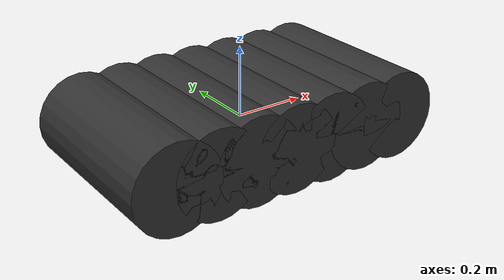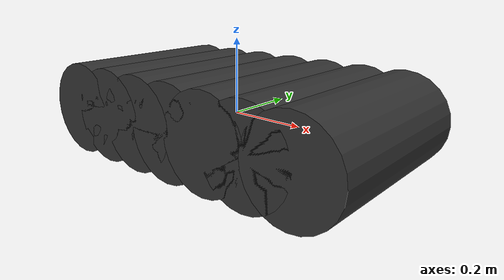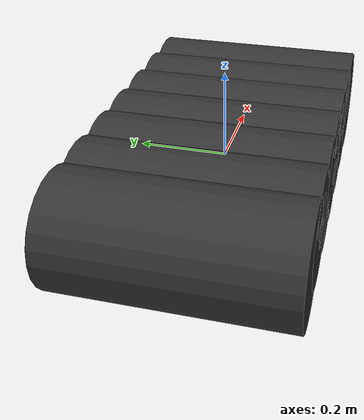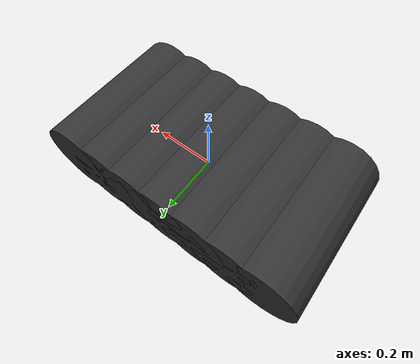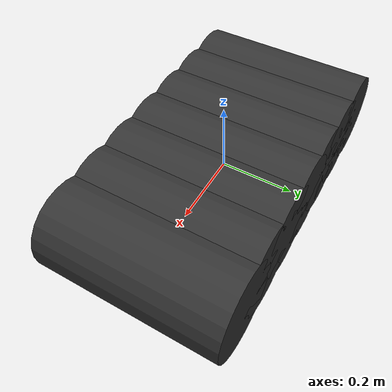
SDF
<sdf version='1.7'>
  <model name='example_track_simple_wheels'>
    <link name='base_link'>
      <inertial>
        <pose>-0.057143 0 0 0 -0 0</pose>
        <mass>1.4</mass>
        <inertia>
          <ixx>0.0140694</ixx>
          <ixy>2.35427e-19</ixy>
          <ixz>0</ixz>
          <iyy>0.0339144</iyy>
          <iyz>0</iyz>
          <izz>0.045498</izz>
        </inertia>
      </inertial>
      <collision name='base_link_collision'>
        <pose>0 0 0 0 -0 0</pose>
        <geometry>
          <box>
            <size>0.1 0.1 0.1</size>
          </box>
        </geometry>
      </collision>
      <collision name='base_link_fixed_joint_lump__idler_left_collision_1'>
        <pose>-0.2 0.095 0 1.5708 -0 0</pose>
        <geometry>
          <cylinder>
            <length>0.1115</length>
            <radius>0.064</radius>
          </cylinder>
        </geometry>
      </collision>
      <collision name='base_link_fixed_joint_lump__idler_right_collision_2'>
        <pose>-0.2 -0.095 0 1.5708 -0 0</pose>
        <geometry>
          <cylinder>
            <length>0.1115</length>
            <radius>0.064</radius>
          </cylinder>
        </geometry>
      </collision>
      <visual name='base_link_visual'>
        <pose>0 0 0 0 -0 0</pose>
        <geometry>
          <box>
            <size>0.1 0.1 0.1</size>
          </box>
        </geometry>
      </visual>
      <visual name='base_link_fixed_joint_lump__idler_left_visual_1'>
        <pose>-0.2 0.095 0 1.5708 -0 0</pose>
        <geometry>
          <cylinder>
            <length>0.1115</length>
            <radius>0.064</radius>
          </cylinder>
        </geometry>
      </visual>
      <visual name='base_link_fixed_joint_lump__idler_right_visual_2'>
        <pose>-0.2 -0.095 0 1.5708 -0 0</pose>
        <geometry>
          <cylinder>
            <length>0.1115</length>
            <radius>0.064</radius>
          </cylinder>
        </geometry>
      </visual>
    </link>
    <joint name='sprocket_left_axle' type='revolute'>
      <pose relative_to='base_link'>0.2 0.095 0 0 -0 0</pose>
      <parent>base_link</parent>
      <child>sprocket_left</child>
      <axis>
        <xyz>0 1 0</xyz>
        <limit>
          <lower>-1e+16</lower>
          <upper>1e+16</upper>
        </limit>
        <dynamics>
          <spring_reference>0</spring_reference>
          <spring_stiffness>0</spring_stiffness>
        </dynamics>
      </axis>
    </joint>
    <link name='sprocket_left'>
      <pose relative_to='sprocket_left_axle'>0 0 0 0 -0 0</pose>
      <inertial>
        <pose>0 0 0 0 -0 0</pose>
        <mass>0.2</mass>
        <inertia>
          <ixx>0.000412004</ixx>
          <ixy>0</ixy>
          <ixz>0</ixz>
          <iyy>0.0004096</iyy>
          <iyz>0</iyz>
          <izz>0.000412004</izz>
        </inertia>
      </inertial>
      <collision name='sprocket_left_collision'>
        <pose>0 0 0 1.5708 -0 0</pose>
        <geometry>
          <cylinder>
            <length>0.1115</length>
            <radius>0.064</radius>
          </cylinder>
        </geometry>
      </collision>
      <visual name='sprocket_left_visual'>
        <pose>0 0 0 1.5708 -0 0</pose>
        <geometry>
          <cylinder>
            <length>0.1115</length>
            <radius>0.064</radius>
          </cylinder>
        </geometry>
      </visual>
      <visual name='sprocket_left_visual_1'>
        <pose>0 0 0 0 -0 0</pose>
        <geometry>
          <box>
            <size>0.01 0.1115 0.1</size>
          </box>
        </geometry>
      </visual>
      <visual name='sprocket_left_visual_2'>
        <pose>0 0 0 0 -0 0</pose>
        <geometry>
          <box>
            <size>0.1 0.1115 0.01</size>
          </box>
        </geometry>
      </visual>
    </link>
    <joint name='sprocket_right_axle' type='revolute'>
      <pose relative_to='base_link'>0.2 -0.095 0 0 -0 0</pose>
      <parent>base_link</parent>
      <child>sprocket_right</child>
      <axis>
        <xyz>0 1 0</xyz>
        <limit>
          <lower>-1e+16</lower>
          <upper>1e+16</upper>
        </limit>
        <dynamics>
          <spring_reference>0</spring_reference>
          <spring_stiffness>0</spring_stiffness>
        </dynamics>
      </axis>
    </joint>
    <link name='sprocket_right'>
      <pose relative_to='sprocket_right_axle'>0 0 0 0 -0 0</pose>
      <inertial>
        <pose>0 0 0 0 -0 0</pose>
        <mass>0.2</mass>
        <inertia>
          <ixx>0.000412004</ixx>
          <ixy>0</ixy>
          <ixz>0</ixz>
          <iyy>0.0004096</iyy>
          <iyz>0</iyz>
          <izz>0.000412004</izz>
        </inertia>
      </inertial>
      <collision name='sprocket_right_collision'>
        <pose>0 0 0 1.5708 -0 0</pose>
        <geometry>
          <cylinder>
            <length>0.1115</length>
            <radius>0.064</radius>
          </cylinder>
        </geometry>
      </collision>
      <visual name='sprocket_right_visual'>
        <pose>0 0 0 1.5708 -0 0</pose>
        <geometry>
          <cylinder>
            <length>0.1115</length>
            <radius>0.064</radius>
          </cylinder>
        </geometry>
      </visual>
      <visual name='sprocket_right_visual_1'>
        <pose>0 0 0 0 -0 0</pose>
        <geometry>
          <box>
            <size>0.01 0.1115 0.1</size>
          </box>
        </geometry>
      </visual>
      <visual name='sprocket_right_visual_2'>
        <pose>0 0 0 0 -0 0</pose>
        <geometry>
          <box>
            <size>0.1 0.1115 0.01</size>
          </box>
        </geometry>
      </visual>
    </link>
    <link name='track_wheel_link0'>
      <pose>0.35 0 0.125 0 -0 0</pose>
      <inertial>
        <pose>0 0 -0.125 1.5708 -0 0</pose>
        <mass>0.0571429</mass>
        <inertia>
          <ixx>0.00141369</ixx>
          <ixy>0</ixy>
          <ixz>0</ixz>
          <iyy>0.00141369</iyy>
          <iyz>0</iyz>
          <izz>0.000446429</izz>
        </inertia>
      </inertial>
      <collision name='collision'>
        <pose>0 0 -0.125 1.5708 -0 0</pose>
        <geometry>
          <cylinder>
            <length>0.5</length>
            <radius>0.125</radius>
          </cylinder>
        </geometry>
        <surface>
          <friction>
            <ode>
              <mu>0.5</mu>
              <mu2>0.5</mu2>
            </ode>
          </friction>
          <contact>
            <ode>
              <min_depth>0.01</min_depth>
            </ode>
          </contact>
        </surface>
      </collision>
      <visual name='visual'>
        <pose>0 0 -0.125 1.5708 -0 0</pose>
        <geometry>
          <cylinder>
            <length>0.5</length>
            <radius>0.125</radius>
          </cylinder>
        </geometry>
        <material>
          <ambient>0.3 0.1 0.1 1</ambient>
          <diffuse>0.2 0.2 0.2 1</diffuse>
          <specular>0 0 0 1</specular>
          <emissive>0 0 0 1</emissive>
        </material>
      </visual>
    </link>
    <link name='track_wheel_link1'>
      <pose>0.233333 0 0.125 0 -0 0</pose>
      <inertial>
        <pose>0 0 -0.125 1.5708 -0 0</pose>
        <mass>0.0571429</mass>
        <inertia>
          <ixx>0.00141369</ixx>
          <ixy>0</ixy>
          <ixz>0</ixz>
          <iyy>0.00141369</iyy>
          <iyz>0</iyz>
          <izz>0.000446429</izz>
        </inertia>
      </inertial>
      <collision name='collision'>
        <pose>0 0 -0.125 1.5708 -0 0</pose>
        <geometry>
          <cylinder>
            <length>0.5</length>
            <radius>0.125</radius>
          </cylinder>
        </geometry>
        <surface>
          <friction>
            <ode>
              <mu>0.5</mu>
              <mu2>0.5</mu2>
            </ode>
          </friction>
          <contact>
            <ode>
              <min_depth>0.01</min_depth>
            </ode>
          </contact>
        </surface>
      </collision>
      <visual name='visual'>
        <pose>0 0 -0.125 1.5708 -0 0</pose>
        <geometry>
          <cylinder>
            <length>0.5</length>
            <radius>0.125</radius>
          </cylinder>
        </geometry>
        <material>
          <ambient>0.3 0.1 0.1 1</ambient>
          <diffuse>0.2 0.2 0.2 1</diffuse>
          <specular>0 0 0 1</specular>
          <emissive>0 0 0 1</emissive>
        </material>
      </visual>
    </link>
    <link name='track_wheel_link2'>
      <pose>0.116667 0 0.125 0 -0 0</pose>
      <inertial>
        <pose>0 0 -0.125 1.5708 -0 0</pose>
        <mass>0.0571429</mass>
        <inertia>
          <ixx>0.00141369</ixx>
          <ixy>0</ixy>
          <ixz>0</ixz>
          <iyy>0.00141369</iyy>
          <iyz>0</iyz>
          <izz>0.000446429</izz>
        </inertia>
      </inertial>
      <collision name='collision'>
        <pose>0 0 -0.125 1.5708 -0 0</pose>
        <geometry>
          <cylinder>
            <length>0.5</length>
            <radius>0.125</radius>
          </cylinder>
        </geometry>
        <surface>
          <friction>
            <ode>
              <mu>0.5</mu>
              <mu2>0.5</mu2>
            </ode>
          </friction>
          <contact>
            <ode>
              <min_depth>0.01</min_depth>
            </ode>
          </contact>
        </surface>
      </collision>
      <visual name='visual'>
        <pose>0 0 -0.125 1.5708 -0 0</pose>
        <geometry>
          <cylinder>
            <length>0.5</length>
            <radius>0.125</radius>
          </cylinder>
        </geometry>
        <material>
          <ambient>0.3 0.1 0.1 1</ambient>
          <diffuse>0.2 0.2 0.2 1</diffuse>
          <specular>0 0 0 1</specular>
          <emissive>0 0 0 1</emissive>
        </material>
      </visual>
    </link>
    <link name='track_wheel_link3'>
      <pose>0 0 0.125 0 -0 0</pose>
      <inertial>
        <pose>0 0 -0.125 1.5708 -0 0</pose>
        <mass>0.0571429</mass>
        <inertia>
          <ixx>0.00141369</ixx>
          <ixy>0</ixy>
          <ixz>0</ixz>
          <iyy>0.00141369</iyy>
          <iyz>0</iyz>
          <izz>0.000446429</izz>
        </inertia>
      </inertial>
      <collision name='collision'>
        <pose>0 0 -0.125 1.5708 -0 0</pose>
        <geometry>
          <cylinder>
            <length>0.5</length>
            <radius>0.125</radius>
          </cylinder>
        </geometry>
        <surface>
          <friction>
            <ode>
              <mu>0.5</mu>
              <mu2>0.5</mu2>
            </ode>
          </friction>
          <contact>
            <ode>
              <min_depth>0.01</min_depth>
            </ode>
          </contact>
        </surface>
      </collision>
      <visual name='visual'>
        <pose>0 0 -0.125 1.5708 -0 0</pose>
        <geometry>
          <cylinder>
            <length>0.5</length>
            <radius>0.125</radius>
          </cylinder>
        </geometry>
        <material>
          <ambient>0.3 0.1 0.1 1</ambient>
          <diffuse>0.2 0.2 0.2 1</diffuse>
          <specular>0 0 0 1</specular>
          <emissive>0 0 0 1</emissive>
        </material>
      </visual>
    </link>
    <link name='track_wheel_link4'>
      <pose>-0.116667 0 0.125 0 -0 0</pose>
      <inertial>
        <pose>0 0 -0.125 1.5708 -0 0</pose>
        <mass>0.0571429</mass>
        <inertia>
          <ixx>0.00141369</ixx>
          <ixy>0</ixy>
          <ixz>0</ixz>
          <iyy>0.00141369</iyy>
          <iyz>0</iyz>
          <izz>0.000446429</izz>
        </inertia>
      </inertial>
      <collision name='collision'>
        <pose>0 0 -0.125 1.5708 -0 0</pose>
        <geometry>
          <cylinder>
            <length>0.5</length>
            <radius>0.125</radius>
          </cylinder>
        </geometry>
        <surface>
          <friction>
            <ode>
              <mu>0.5</mu>
              <mu2>0.5</mu2>
            </ode>
          </friction>
          <contact>
            <ode>
              <min_depth>0.01</min_depth>
            </ode>
          </contact>
        </surface>
      </collision>
      <visual name='visual'>
        <pose>0 0 -0.125 1.5708 -0 0</pose>
        <geometry>
          <cylinder>
            <length>0.5</length>
            <radius>0.125</radius>
          </cylinder>
        </geometry>
        <material>
          <ambient>0.3 0.1 0.1 1</ambient>
          <diffuse>0.2 0.2 0.2 1</diffuse>
          <specular>0 0 0 1</specular>
          <emissive>0 0 0 1</emissive>
        </material>
      </visual>
    </link>
    <link name='track_wheel_link5'>
      <pose>-0.233333 0 0.125 0 -0 0</pose>
      <inertial>
        <pose>0 0 -0.125 1.5708 -0 0</pose>
        <mass>0.0571429</mass>
        <inertia>
          <ixx>0.00141369</ixx>
          <ixy>0</ixy>
          <ixz>0</ixz>
          <iyy>0.00141369</iyy>
          <iyz>0</iyz>
          <izz>0.000446429</izz>
        </inertia>
      </inertial>
      <collision name='collision'>
        <pose>0 0 -0.125 1.5708 -0 0</pose>
        <geometry>
          <cylinder>
            <length>0.5</length>
            <radius>0.125</radius>
          </cylinder>
        </geometry>
        <surface>
          <friction>
            <ode>
              <mu>0.5</mu>
              <mu2>0.5</mu2>
            </ode>
          </friction>
          <contact>
            <ode>
              <min_depth>0.01</min_depth>
            </ode>
          </contact>
        </surface>
      </collision>
      <visual name='visual'>
        <pose>0 0 -0.125 1.5708 -0 0</pose>
        <geometry>
          <cylinder>
            <length>0.5</length>
            <radius>0.125</radius>
          </cylinder>
        </geometry>
        <material>
          <ambient>0.3 0.1 0.1 1</ambient>
          <diffuse>0.2 0.2 0.2 1</diffuse>
          <specular>0 0 0 1</specular>
          <emissive>0 0 0 1</emissive>
        </material>
      </visual>
    </link>
    <link name='track_wheel_link6'>
      <pose>-0.35 0 0.125 0 -0 0</pose>
      <inertial>
        <pose>0 0 -0.125 1.5708 -0 0</pose>
        <mass>0.0571429</mass>
        <inertia>
          <ixx>0.00141369</ixx>
          <ixy>0</ixy>
          <ixz>0</ixz>
          <iyy>0.00141369</iyy>
          <iyz>0</iyz>
          <izz>0.000446429</izz>
        </inertia>
      </inertial>
      <collision name='collision'>
        <pose>0 0 -0.125 1.5708 -0 0</pose>
        <geometry>
          <cylinder>
            <length>0.5</length>
            <radius>0.125</radius>
          </cylinder>
        </geometry>
        <surface>
          <friction>
            <ode>
              <mu>0.5</mu>
              <mu2>0.5</mu2>
            </ode>
          </friction>
          <contact>
            <ode>
              <min_depth>0.01</min_depth>
            </ode>
          </contact>
        </surface>
      </collision>
      <visual name='visual'>
        <pose>0 0 -0.125 1.5708 -0 0</pose>
        <geometry>
          <cylinder>
            <length>0.5</length>
            <radius>0.125</radius>
          </cylinder>
        </geometry>
        <material>
          <ambient>0.3 0.1 0.1 1</ambient>
          <diffuse>0.2 0.2 0.2 1</diffuse>
          <specular>0 0 0 1</specular>
          <emissive>0 0 0 1</emissive>
        </material>
      </visual>
    </link>
    <joint name='track_wheel_joint0' type='revolute'>
      <child>track_wheel_link0</child>
      <parent>body</parent>
      <pose>0 0 -0.125 0 -0 0</pose>
      <axis>
        <xyz>0 1 0</xyz>
        <use_parent_model_frame>0</use_parent_model_frame>
        <limit>
          <lower>-1e+16</lower>
          <upper>1e+16</upper>
        </limit>
      </axis>
      <physics>
        <ode>
          <implicit_spring_damper>1</implicit_spring_damper>
        </ode>
      </physics>
    </joint>
    <joint name='track_wheel_joint1' type='revolute'>
      <child>track_wheel_link1</child>
      <parent>body</parent>
      <pose>0 0 -0.125 0 -0 0</pose>
      <axis>
        <xyz>0 1 0</xyz>
        <use_parent_model_frame>0</use_parent_model_frame>
        <limit>
          <lower>-1e+16</lower>
          <upper>1e+16</upper>
        </limit>
      </axis>
      <physics>
        <ode>
          <implicit_spring_damper>1</implicit_spring_damper>
        </ode>
      </physics>
    </joint>
    <joint name='track_wheel_joint2' type='revolute'>
      <child>track_wheel_link2</child>
      <parent>body</parent>
      <pose>0 0 -0.125 0 -0 0</pose>
      <axis>
        <xyz>0 1 0</xyz>
        <use_parent_model_frame>0</use_parent_model_frame>
        <limit>
          <lower>-1e+16</lower>
          <upper>1e+16</upper>
        </limit>
      </axis>
      <physics>
        <ode>
          <implicit_spring_damper>1</implicit_spring_damper>
        </ode>
      </physics>
    </joint>
    <joint name='track_wheel_joint3' type='revolute'>
      <child>track_wheel_link3</child>
      <parent>body</parent>
      <pose>0 0 -0.125 0 -0 0</pose>
      <axis>
        <xyz>0 1 0</xyz>
        <use_parent_model_frame>0</use_parent_model_frame>
        <limit>
          <lower>-1e+16</lower>
          <upper>1e+16</upper>
        </limit>
      </axis>
      <physics>
        <ode>
          <implicit_spring_damper>1</implicit_spring_damper>
        </ode>
      </physics>
    </joint>
    <joint name='track_wheel_joint4' type='revolute'>
      <child>track_wheel_link4</child>
      <parent>body</parent>
      <pose>0 0 -0.125 0 -0 0</pose>
      <axis>
        <xyz>0 1 0</xyz>
        <use_parent_model_frame>0</use_parent_model_frame>
        <limit>
          <lower>-1e+16</lower>
          <upper>1e+16</upper>
        </limit>
      </axis>
      <physics>
        <ode>
          <implicit_spring_damper>1</implicit_spring_damper>
        </ode>
      </physics>
    </joint>
    <joint name='track_wheel_joint5' type='revolute'>
      <child>track_wheel_link5</child>
      <parent>body</parent>
      <pose>0 0 -0.125 0 -0 0</pose>
      <axis>
        <xyz>0 1 0</xyz>
        <use_parent_model_frame>0</use_parent_model_frame>
        <limit>
          <lower>-1e+16</lower>
          <upper>1e+16</upper>
        </limit>
      </axis>
      <physics>
        <ode>
          <implicit_spring_damper>1</implicit_spring_damper>
        </ode>
      </physics>
    </joint>
    <joint name='track_wheel_joint6' type='revolute'>
      <child>track_wheel_link6</child>
      <parent>body</parent>
      <pose>0 0 -0.125 0 -0 0</pose>
      <axis>
        <xyz>0 1 0</xyz>
        <use_parent_model_frame>0</use_parent_model_frame>
        <limit>
          <lower>-1e+16</lower>
          <upper>1e+16</upper>
        </limit>
      </axis>
      <physics>
        <ode>
          <implicit_spring_damper>1</implicit_spring_damper>
        </ode>
      </physics>
    </joint>
    <plugin name='track' filename='libContinuousTrackSimple.so'>
      <sprocket>
        <joint>sprocket_axle</joint>
        <pitch_diameter>0.24</pitch_diameter>
      </sprocket>
      <track>
        <segment>
          <joint>track_wheel_joint0</joint>
          <pitch_diameter>0.24</pitch_diameter>
        </segment>
        <segment>
          <joint>track_wheel_joint1</joint>
          <pitch_diameter>0.24</pitch_diameter>
        </segment>
        <segment>
          <joint>track_wheel_joint2</joint>
          <pitch_diameter>0.24</pitch_diameter>
        </segment>
        <segment>
          <joint>track_wheel_joint3</joint>
          <pitch_diameter>0.24</pitch_diameter>
        </segment>
        <segment>
          <joint>track_wheel_joint4</joint>
          <pitch_diameter>0.24</pitch_diameter>
        </segment>
        <segment>
          <joint>track_wheel_joint5</joint>
          <pitch_diameter>0.24</pitch_diameter>
        </segment>
        <segment>
          <joint>track_wheel_joint6</joint>
          <pitch_diameter>0.24</pitch_diameter>
        </segment>
      </track>
    </plugin>
    <static>0</static>
    <plugin name='gazebo_ros_control' filename='libgazebo_ros_control.so'>
      <robotSimType>gazebo_ros_control/DefaultRobotHWSim</robotSimType>
      <legacyModeNS>0</legacyModeNS>
    </plugin>
  </model>
</sdf>
